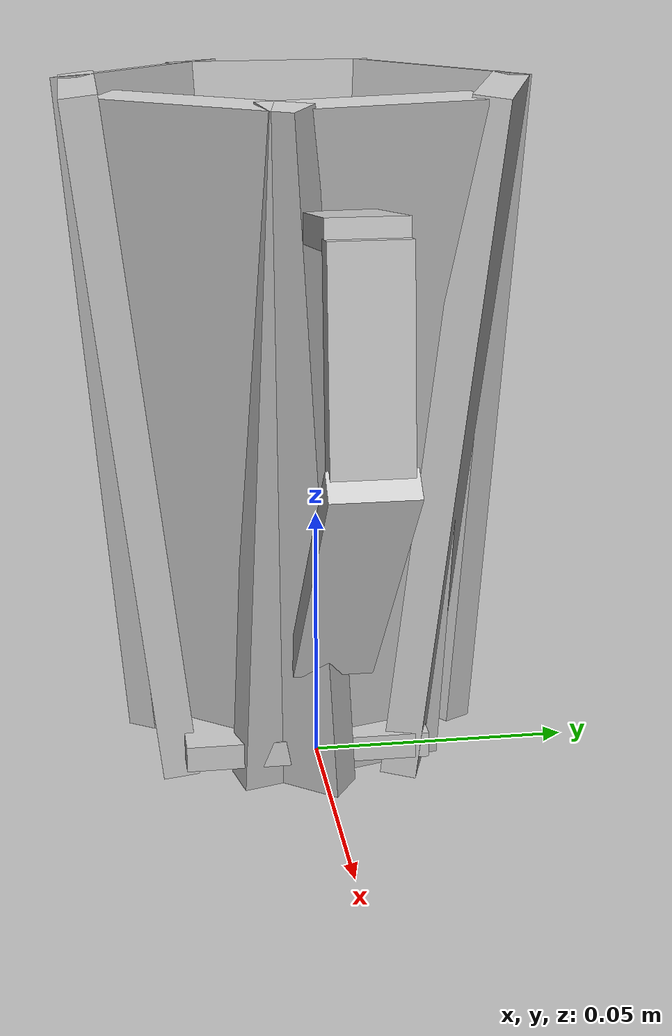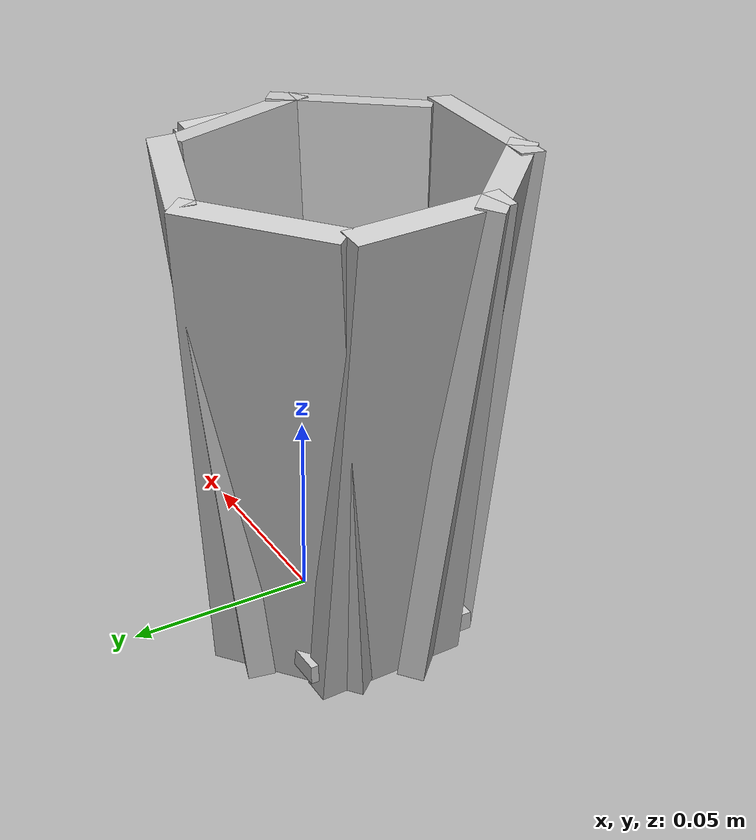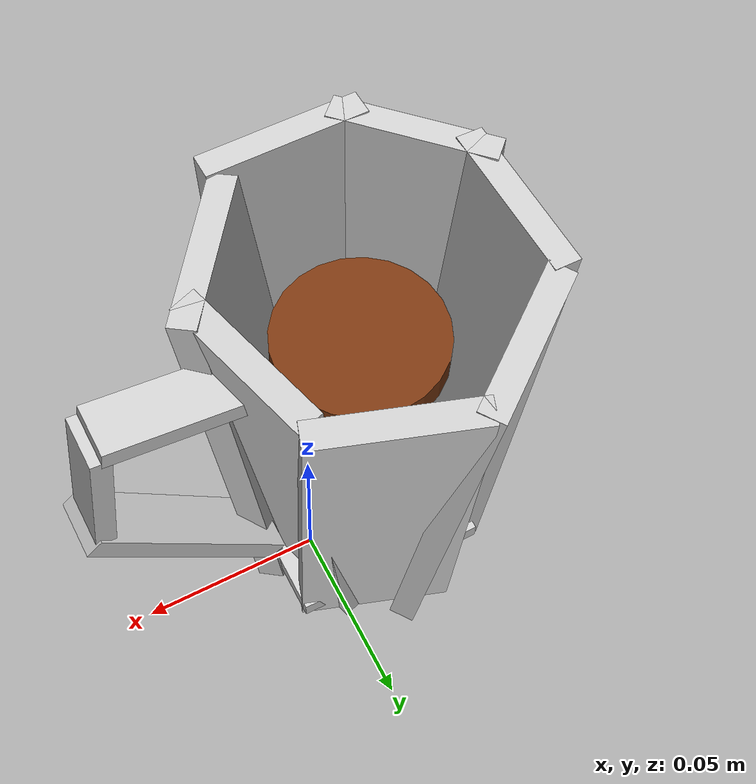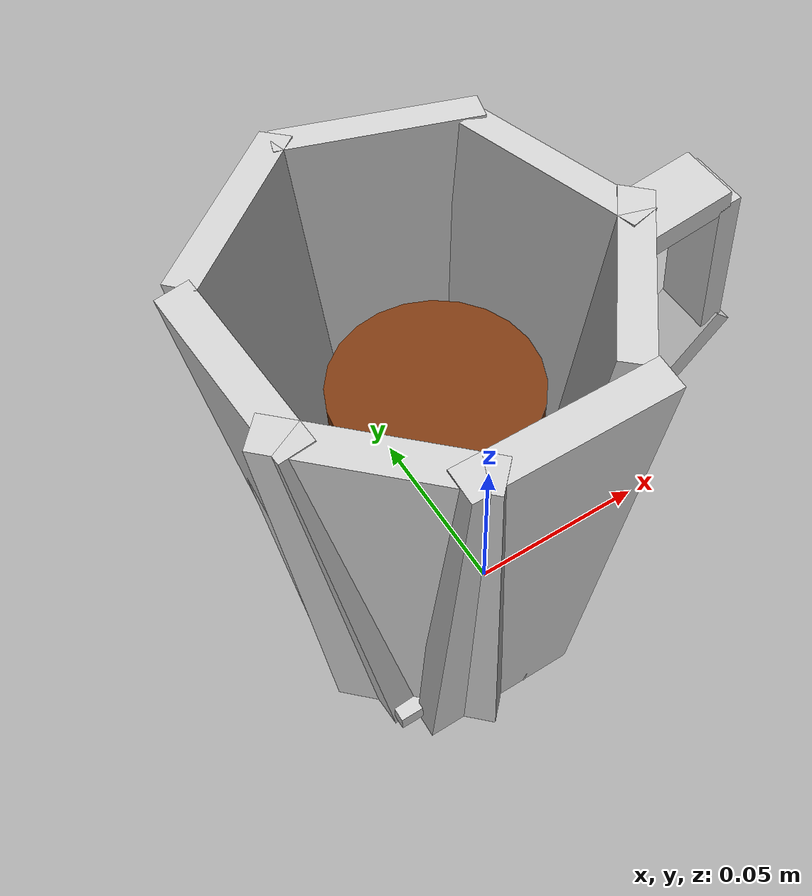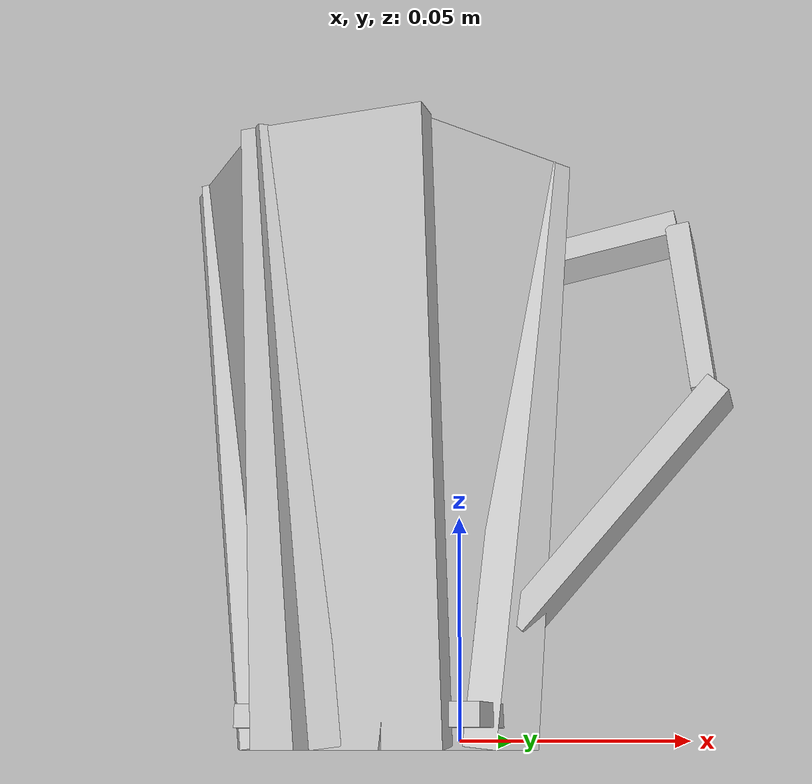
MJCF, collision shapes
<mujoco model="red_coffee_mug_with_coffee">
  <asset>
    <texture file="../../turbosquid_objects/red_coffee_mug/red_coffee_mug_texture.png" name="tex-red_coffee_mug_with_coffee" type="2d" />
    <material name="red_coffee_mug_with_coffee" reflectance="0.5" texrepeat="1 1" texture="tex-red_coffee_mug_with_coffee" texuniform="false" />
    <material name="coffee_liquid" rgba="0.48 0.22 0.065 1" specular="0.35" shininess="0.45" reflectance="0.15" />
    <mesh file="../../turbosquid_objects/red_coffee_mug/visual/red_coffee_mug_vis.msh" name="red_coffee_mug_vis" scale="1.0 1.0 1.0" />
  </asset>
  <worldbody>
    <body>
      <body name="object">
        <geom solimp="0.998 0.998 0.001" solref="0.001 1" density="100" friction="0.95 0.3 0.1" type="mesh" mesh="red_coffee_mug_vis" conaffinity="0" contype="0" group="1" material="red_coffee_mug_with_coffee" />
        <geom name="coffee_liquid_visual" type="cylinder" pos="-0.016 -0.003 0.095" quat="1 0 0 0" size="0.022 0.004" group="1" rgba="0.48 0.22 0.065 1" contype="0" conaffinity="0" />
        <geom solimp="0.998 0.998 0.001" solref="0.001 1" density="100" friction="0.95 0.3 0.1" type="box" pos="-0.01531 -0.00301 0.00526" quat="0.70711 0.00000 0.70711 0.00000" size="0.00251 0.02354 0.02686" group="0" rgba="0.8 0.8 0.8 0.3" />
        <geom solimp="0.998 0.998 0.001" solref="0.001 1" density="100" friction="0.95 0.3 0.1" type="box" pos="0.00784 -0.01707 0.06450" quat="0.01829 -0.94542 0.32085 0.05388" size="0.00351 0.02064 0.06637" group="0" rgba="0.8 0.8 0.8 0.3" />
        <geom solimp="0.998 0.998 0.001" solref="0.001 1" density="100" friction="0.95 0.3 0.1" type="box" pos="-0.01551 -0.03478 0.06450" quat="0.04024 -0.70596 -0.70596 -0.04024" size="0.00351 0.02064 0.06637" group="0" rgba="0.8 0.8 0.8 0.3" />
        <geom solimp="0.998 0.998 0.001" solref="0.001 1" density="100" friction="0.95 0.3 0.1" type="box" pos="0.01023 0.00559 0.06450" quat="0.98871 -0.00790 0.05635 0.13863" size="0.00351 0.02064 0.06637" group="0" rgba="0.8 0.8 0.8 0.3" />
        <geom solimp="0.998 0.998 0.001" solref="0.001 1" density="100" friction="0.95 0.3 0.1" type="box" pos="-0.00677 0.02828 0.06450" quat="0.80894 -0.03335 0.04610 0.58513" size="0.00351 0.02064 0.06637" group="0" rgba="0.8 0.8 0.8 0.3" />
        <geom solimp="0.998 0.998 0.001" solref="0.001 1" density="100" friction="0.95 0.3 0.1" type="box" pos="-0.03366 0.02452 0.06450" quat="0.05122 0.43474 0.89876 -0.02478" size="0.00351 0.02064 0.06637" group="0" rgba="0.8 0.8 0.8 0.3" />
        <geom solimp="0.998 0.998 0.001" solref="0.001 1" density="100" friction="0.95 0.3 0.1" type="box" pos="-0.04726 -0.00246 0.06450" quat="0.05689 -0.02366 0.99810 0.00135" size="0.00351 0.02064 0.06637" group="0" rgba="0.8 0.8 0.8 0.3" />
        <geom solimp="0.998 0.998 0.001" solref="0.001 1" density="100" friction="0.95 0.3 0.1" type="box" pos="-0.03828 -0.02489 0.06450" quat="0.38651 0.05247 0.02203 -0.92053" size="0.00351 0.02064 0.06637" group="0" rgba="0.8 0.8 0.8 0.3" />
        <geom solimp="0.998 0.998 0.001" solref="0.001 1" density="100" friction="0.95 0.3 0.1" type="box" pos="0.03685 0.00109 0.05041" quat="0.93181 -0.00000 0.36295 -0.00000" size="0.00292 0.00757 0.03425" group="0" rgba="0.8 0.8 0.8 0.3" />
        <geom solimp="0.998 0.998 0.001" solref="0.001 1" density="100" friction="0.95 0.3 0.1" type="box" pos="0.05474 0.00109 0.09435" quat="0.99869 0.00000 -0.05124 0.00000" size="0.00266 0.00692 0.01924" group="0" rgba="0.8 0.8 0.8 0.3" />
        <geom solimp="0.998 0.998 0.001" solref="0.001 1" density="100" friction="0.95 0.3 0.1" type="box" pos="0.03457 0.00109 0.11162" quat="0.75578 -0.00000 0.65483 -0.00000" size="0.00266 0.00692 0.01822" group="0" rgba="0.8 0.8 0.8 0.3" />
      </body>
      <site rgba="0 0 0 0" size="0.005" pos="0 0 -0.06" name="bottom_site" />
      <site rgba="0 0 0 0" size="0.005" pos="0 0 0.04" name="top_site" />
      <site rgba="0 0 0 0" size="0.005" pos="0.025 0.025 0" name="horizontal_radius_site" />
    </body>
  </worldbody>
</mujoco>
